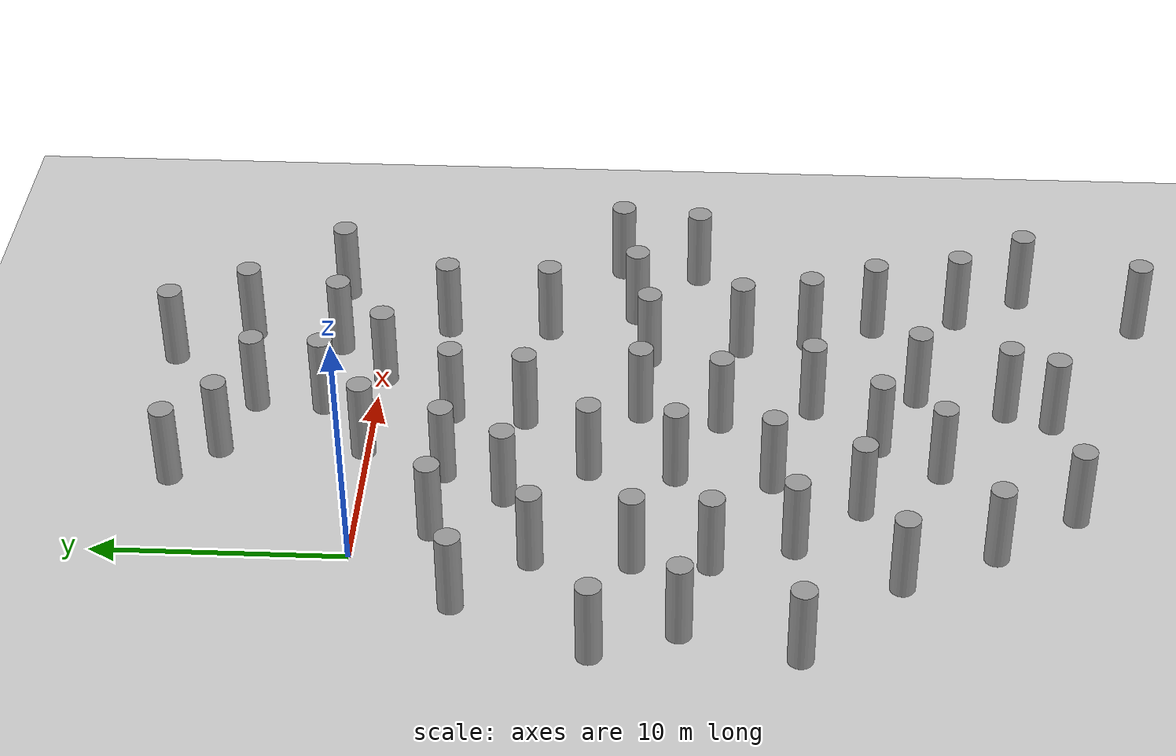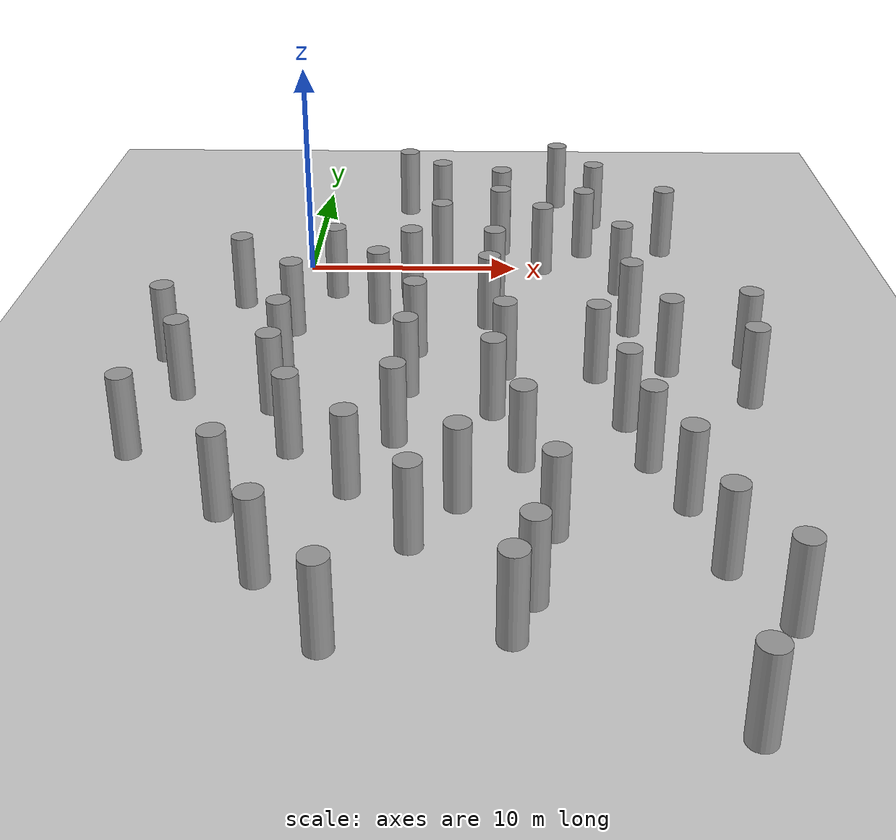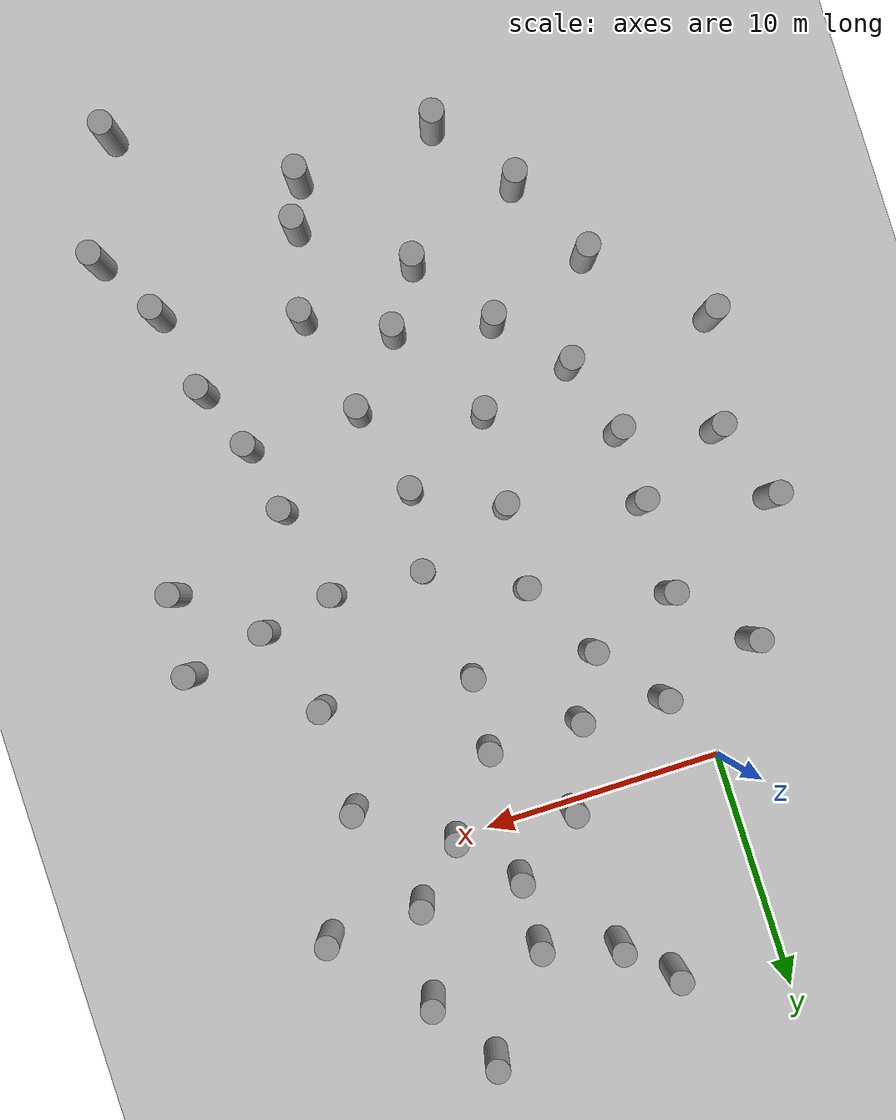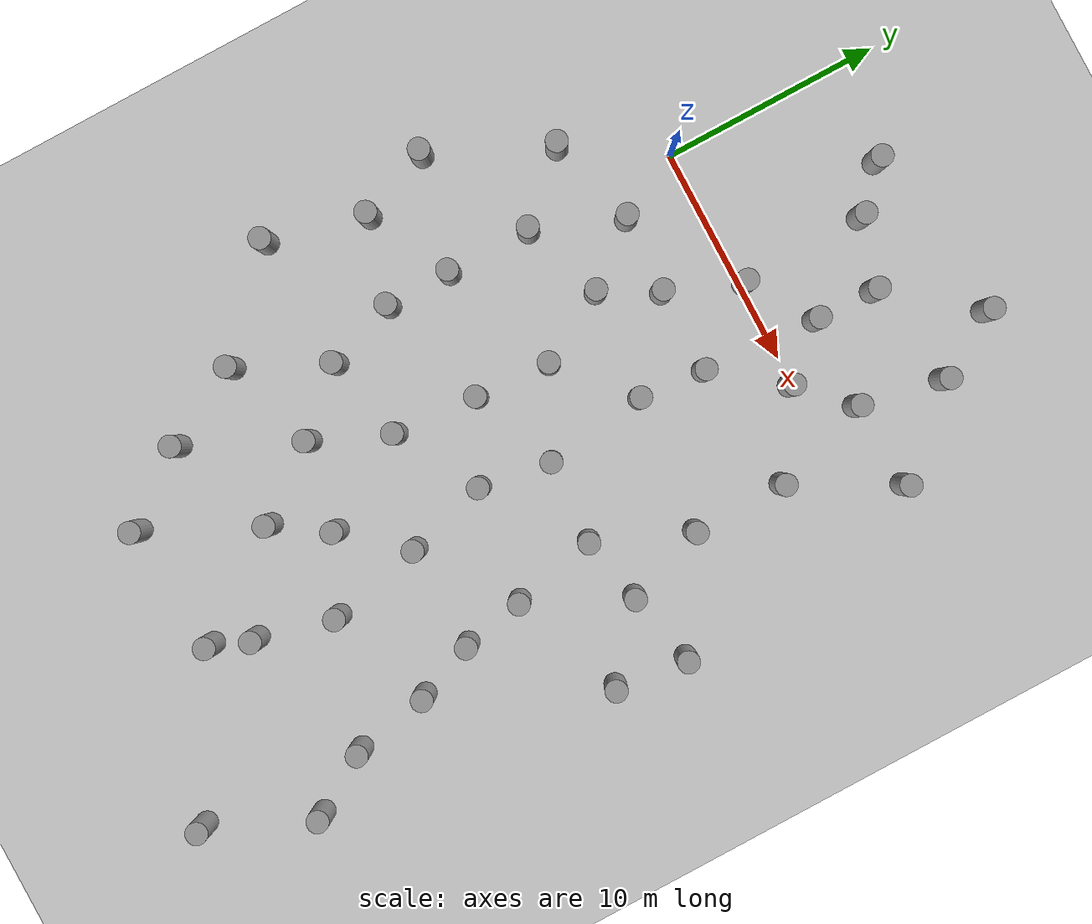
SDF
<sdf version="1.6">
 <world name="default">
  <model name="ground_plane">
   <static>1</static>
   <link name="link">
    <collision name="collision">
     <geometry><plane><normal>0 0 1</normal><size>5000 5000</size></plane></geometry>
     <surface><friction><ode><mu>1</mu><mu2>2</mu2></ode></friction></surface>
    </collision>
    <visual name="runway">
     <cast_shadows>0</cast_shadows>
     <geometry><plane><normal>0 0 1</normal><size>700 700</size></plane></geometry>
     <material>
      <script><uri>file://media/materials/scripts/gazebo.material</uri><name>Gazebo/Gray</name></script>
     </material>
    </visual>
   </link>
  </model>
  <model name="unit_cylinder_clone_0_clone">
   <link name="link">
    <inertial>
     <mass>1</mass>
     <inertia><ixx>0.145833</ixx><ixy>0</ixy><ixz>0</ixz><iyy>0.145833</iyy><iyz>0</iyz><izz>0.125</izz></inertia>
    </inertial>
    <gravity>0</gravity>
    <visual name="visual">
     <geometry><cylinder><radius>0.5</radius><length>3.42215</length></cylinder></geometry>
     <material>
      <script><name>Gazebo/Grey</name><uri>file://media/materials/scripts/gazebo.material</uri></script>
      <shader type="pixel"><normal_map>__default__</normal_map></shader>
     </material>
    </visual>
   </link>
   <static>0</static>
   <pose>6.42186 0.174639 1.71107 0 0 -0.000115</pose>
  </model>
  <model name="unit_cylinder_clone_0_clone_clone">
   <link name="link">
    <inertial>
     <mass>1</mass>
     <inertia><ixx>0.145833</ixx><ixy>0</ixy><ixz>0</ixz><iyy>0.145833</iyy><iyz>0</iyz><izz>0.125</izz></inertia>
    </inertial>
    <gravity>0</gravity>
    <visual name="visual">
     <geometry><cylinder><radius>0.5</radius><length>3.42215</length></cylinder></geometry>
     <material>
      <script><name>Gazebo/Grey</name><uri>file://media/materials/scripts/gazebo.material</uri></script>
      <shader type="pixel"><normal_map>__default__</normal_map></shader>
     </material>
    </visual>
   </link>
   <static>0</static>
   <pose>8.93174 -3.18169 1.71107 0 0 -0.000115</pose>
  </model>
  <model name="unit_cylinder_clone_0_clone_clone_0">
   <link name="link">
    <inertial>
     <mass>1</mass>
     <inertia><ixx>0.145833</ixx><ixy>0</ixy><ixz>0</ixz><iyy>0.145833</iyy><iyz>0</iyz><izz>0.125</izz></inertia>
    </inertial>
    <gravity>0</gravity>
    <visual name="visual">
     <geometry><cylinder><radius>0.5</radius><length>3.42215</length></cylinder></geometry>
     <material>
      <script><name>Gazebo/Grey</name><uri>file://media/materials/scripts/gazebo.material</uri></script>
      <shader type="pixel"><normal_map>__default__</normal_map></shader>
     </material>
    </visual>
   </link>
   <static>0</static>
   <pose>9.28561 2.13063 1.71107 0 0 -0.000115</pose>
  </model>
  <model name="unit_cylinder_clone_0_clone_clone_1">
   <link name="link">
    <inertial>
     <mass>1</mass>
     <inertia><ixx>0.145833</ixx><ixy>0</ixy><ixz>0</ixz><iyy>0.145833</iyy><iyz>0</iyz><izz>0.125</izz></inertia>
    </inertial>
    <gravity>0</gravity>
    <visual name="visual">
     <geometry><cylinder><radius>0.5</radius><length>3.42215</length></cylinder></geometry>
     <material>
      <script><name>Gazebo/Grey</name><uri>file://media/materials/scripts/gazebo.material</uri></script>
      <shader type="pixel"><normal_map>__default__</normal_map></shader>
     </material>
    </visual>
   </link>
   <static>0</static>
   <pose>13.4104 1.91654 1.71107 0 0 -0.000115</pose>
  </model>
  <model name="unit_cylinder_clone_0_clone_clone_2">
   <link name="link">
    <inertial>
     <mass>1</mass>
     <inertia><ixx>0.145833</ixx><ixy>0</ixy><ixz>0</ixz><iyy>0.145833</iyy><iyz>0</iyz><izz>0.125</izz></inertia>
    </inertial>
    <gravity>0</gravity>
    <visual name="visual">
     <geometry><cylinder><radius>0.5</radius><length>3.42215</length></cylinder></geometry>
     <material>
      <script><name>Gazebo/Grey</name><uri>file://media/materials/scripts/gazebo.material</uri></script>
      <shader type="pixel"><normal_map>__default__</normal_map></shader>
     </material>
    </visual>
   </link>
   <static>0</static>
   <pose>9.37097 4.93335 1.71107 0 0 -0.000115</pose>
  </model>
  <model name="unit_cylinder_clone_0_clone_clone_3">
   <link name="link">
    <inertial>
     <mass>1</mass>
     <inertia><ixx>0.145833</ixx><ixy>0</ixy><ixz>0</ixz><iyy>0.145833</iyy><iyz>0</iyz><izz>0.125</izz></inertia>
    </inertial>
    <gravity>0</gravity>
    <visual name="visual">
     <geometry><cylinder><radius>0.5</radius><length>3.42215</length></cylinder></geometry>
     <material>
      <script><name>Gazebo/Grey</name><uri>file://media/materials/scripts/gazebo.material</uri></script>
      <shader type="pixel"><normal_map>__default__</normal_map></shader>
     </material>
    </visual>
   </link>
   <static>0</static>
   <pose>14.1844 5.78773 1.71107 0 0 -0.000115</pose>
  </model>
  <model name="unit_cylinder_clone_0_clone_clone_4">
   <link name="link">
    <inertial>
     <mass>1</mass>
     <inertia><ixx>0.145833</ixx><ixy>0</ixy><ixz>0</ixz><iyy>0.145833</iyy><iyz>0</iyz><izz>0.125</izz></inertia>
    </inertial>
    <gravity>0</gravity>
    <visual name="visual">
     <geometry><cylinder><radius>0.5</radius><length>3.42215</length></cylinder></geometry>
     <material>
      <script><name>Gazebo/Grey</name><uri>file://media/materials/scripts/gazebo.material</uri></script>
      <shader type="pixel"><normal_map>__default__</normal_map></shader>
     </material>
    </visual>
   </link>
   <static>0</static>
   <pose>14.8696 -2.51989 1.71107 0 0 -0.000115</pose>
  </model>
  <model name="unit_cylinder_clone_0_clone_clone_5">
   <link name="link">
    <inertial>
     <mass>1</mass>
     <inertia><ixx>0.145833</ixx><ixy>0</ixy><ixz>0</ixz><iyy>0.145833</iyy><iyz>0</iyz><izz>0.125</izz></inertia>
    </inertial>
    <gravity>0</gravity>
    <visual name="visual">
     <geometry><cylinder><radius>0.5</radius><length>3.42215</length></cylinder></geometry>
     <material>
      <script><name>Gazebo/Grey</name><uri>file://media/materials/scripts/gazebo.material</uri></script>
      <shader type="pixel"><normal_map>__default__</normal_map></shader>
     </material>
    </visual>
   </link>
   <static>0</static>
   <pose>14.8701 -6.8123 1.71107 0 0 -0.000115</pose>
  </model>
  <model name="unit_cylinder_clone_0_clone_clone_6">
   <link name="link">
    <inertial>
     <mass>1</mass>
     <inertia><ixx>0.145833</ixx><ixy>0</ixy><ixz>0</ixz><iyy>0.145833</iyy><iyz>0</iyz><izz>0.125</izz></inertia>
    </inertial>
    <gravity>0</gravity>
    <visual name="visual">
     <geometry><cylinder><radius>0.5</radius><length>3.42215</length></cylinder></geometry>
     <material>
      <script><name>Gazebo/Grey</name><uri>file://media/materials/scripts/gazebo.material</uri></script>
      <shader type="pixel"><normal_map>__default__</normal_map></shader>
     </material>
    </visual>
   </link>
   <static>0</static>
   <pose>8.6708 -6.19269 1.71107 0 0 -0.000115</pose>
  </model>
  <model name="unit_cylinder_clone_0_clone_clone_7">
   <link name="link">
    <inertial>
     <mass>1</mass>
     <inertia><ixx>0.145833</ixx><ixy>0</ixy><ixz>0</ixz><iyy>0.145833</iyy><iyz>0</iyz><izz>0.125</izz></inertia>
    </inertial>
    <gravity>0</gravity>
    <visual name="visual">
     <geometry><cylinder><radius>0.5</radius><length>3.42215</length></cylinder></geometry>
     <material>
      <script><name>Gazebo/Grey</name><uri>file://media/materials/scripts/gazebo.material</uri></script>
      <shader type="pixel"><normal_map>__default__</normal_map></shader>
     </material>
    </visual>
   </link>
   <static>0</static>
   <pose>11.2841 -0.175234 1.71107 0 0 -0.000115</pose>
  </model>
  <model name="unit_cylinder_clone_0_clone_clone_9">
   <link name="link">
    <inertial>
     <mass>1</mass>
     <inertia><ixx>0.145833</ixx><ixy>0</ixy><ixz>0</ixz><iyy>0.145833</iyy><iyz>0</iyz><izz>0.125</izz></inertia>
    </inertial>
    <gravity>0</gravity>
    <visual name="visual">
     <geometry><cylinder><radius>0.5</radius><length>3.42215</length></cylinder></geometry>
     <material>
      <script><name>Gazebo/Grey</name><uri>file://media/materials/scripts/gazebo.material</uri></script>
      <shader type="pixel"><normal_map>__default__</normal_map></shader>
     </material>
    </visual>
   </link>
   <static>0</static>
   <pose>17.3993 2.13427 1.71107 0 0 -0.000115</pose>
  </model>
  <model name="unit_cylinder_clone_0_clone_clone_49">
   <link name="link">
    <inertial>
     <mass>1</mass>
     <inertia><ixx>0.145833</ixx><ixy>0</ixy><ixz>0</ixz><iyy>0.145833</iyy><iyz>0</iyz><izz>0.125</izz></inertia>
    </inertial>
    <gravity>0</gravity>
    <visual name="visual">
     <geometry><cylinder><radius>0.5</radius><length>3.42215</length></cylinder></geometry>
     <material>
      <script><name>Gazebo/Grey</name><uri>file://media/materials/scripts/gazebo.material</uri></script>
      <shader type="pixel"><normal_map>__default__</normal_map></shader>
     </material>
    </visual>
   </link>
   <static>0</static>
   <pose>19.5317 -9.74031 1.71107 0 0 -0.000115</pose>
  </model>
  <model name="unit_cylinder_clone_0_clone_clone_55">
   <link name="link">
    <inertial>
     <mass>1</mass>
     <inertia><ixx>0.145833</ixx><ixy>0</ixy><ixz>0</ixz><iyy>0.145833</iyy><iyz>0</iyz><izz>0.125</izz></inertia>
    </inertial>
    <gravity>0</gravity>
    <visual name="visual">
     <geometry><cylinder><radius>0.5</radius><length>3.42215</length></cylinder></geometry>
     <material>
      <script><name>Gazebo/Grey</name><uri>file://media/materials/scripts/gazebo.material</uri></script>
      <shader type="pixel"><normal_map>__default__</normal_map></shader>
     </material>
    </visual>
   </link>
   <static>0</static>
   <pose>18.0249 -26.8343 1.71107 0 0 -0.000115</pose>
  </model>
  <model name="unit_cylinder_clone_0_clone_clone_60">
   <link name="link">
    <inertial>
     <mass>1</mass>
     <inertia><ixx>0.145833</ixx><ixy>0</ixy><ixz>0</ixz><iyy>0.145833</iyy><iyz>0</iyz><izz>0.125</izz></inertia>
    </inertial>
    <gravity>0</gravity>
    <visual name="visual">
     <geometry><cylinder><radius>0.5</radius><length>3.42215</length></cylinder></geometry>
     <material>
      <script><name>Gazebo/Grey</name><uri>file://media/materials/scripts/gazebo.material</uri></script>
      <shader type="pixel"><normal_map>__default__</normal_map></shader>
     </material>
    </visual>
   </link>
   <static>0</static>
   <pose>19.1624 -13.0304 1.71107 0 0 -0.000115</pose>
  </model>
  <model name="unit_cylinder_clone_0_clone_clone_61">
   <link name="link">
    <inertial>
     <mass>1</mass>
     <inertia><ixx>0.145833</ixx><ixy>0</ixy><ixz>0</ixz><iyy>0.145833</iyy><iyz>0</iyz><izz>0.125</izz></inertia>
    </inertial>
    <gravity>0</gravity>
    <visual name="visual">
     <geometry><cylinder><radius>0.5</radius><length>3.42215</length></cylinder></geometry>
     <material>
      <script><name>Gazebo/Grey</name><uri>file://media/materials/scripts/gazebo.material</uri></script>
      <shader type="pixel"><normal_map>__default__</normal_map></shader>
     </material>
    </visual>
   </link>
   <static>0</static>
   <pose>16.1323 -10.4661 1.71107 0 0 -0.000115</pose>
  </model>
  <model name="unit_cylinder_clone_0_clone_clone_62">
   <link name="link">
    <inertial>
     <mass>1</mass>
     <inertia><ixx>0.145833</ixx><ixy>0</ixy><ixz>0</ixz><iyy>0.145833</iyy><iyz>0</iyz><izz>0.125</izz></inertia>
    </inertial>
    <gravity>0</gravity>
    <visual name="visual">
     <geometry><cylinder><radius>0.5</radius><length>3.42215</length></cylinder></geometry>
     <material>
      <script><name>Gazebo/Grey</name><uri>file://media/materials/scripts/gazebo.material</uri></script>
      <shader type="pixel"><normal_map>__default__</normal_map></shader>
     </material>
    </visual>
   </link>
   <static>0</static>
   <pose>16.3551 -24.0548 1.71107 0 0 -0.000115</pose>
  </model>
  <model name="unit_cylinder_clone_0_clone_clone_63">
   <link name="link">
    <inertial>
     <mass>1</mass>
     <inertia><ixx>0.145833</ixx><ixy>0</ixy><ixz>0</ixz><iyy>0.145833</iyy><iyz>0</iyz><izz>0.125</izz></inertia>
    </inertial>
    <gravity>0</gravity>
    <visual name="visual">
     <geometry><cylinder><radius>0.5</radius><length>3.42215</length></cylinder></geometry>
     <material>
      <script><name>Gazebo/Grey</name><uri>file://media/materials/scripts/gazebo.material</uri></script>
      <shader type="pixel"><normal_map>__default__</normal_map></shader>
     </material>
    </visual>
   </link>
   <static>0</static>
   <pose>15.5957 -20.5049 1.71107 0 0 -0.000115</pose>
  </model>
  <model name="unit_cylinder_clone_0_clone_clone_64">
   <link name="link">
    <inertial>
     <mass>1</mass>
     <inertia><ixx>0.145833</ixx><ixy>0</ixy><ixz>0</ixz><iyy>0.145833</iyy><iyz>0</iyz><izz>0.125</izz></inertia>
    </inertial>
    <gravity>0</gravity>
    <visual name="visual">
     <geometry><cylinder><radius>0.5</radius><length>3.42215</length></cylinder></geometry>
     <material>
      <script><name>Gazebo/Grey</name><uri>file://media/materials/scripts/gazebo.material</uri></script>
      <shader type="pixel"><normal_map>__default__</normal_map></shader>
     </material>
    </visual>
   </link>
   <static>0</static>
   <pose>13.9463 -14.9316 1.71107 0 0 -0.000115</pose>
  </model>
  <model name="unit_cylinder_clone_0_clone_clone_65">
   <link name="link">
    <inertial>
     <mass>1</mass>
     <inertia><ixx>0.145833</ixx><ixy>0</ixy><ixz>0</ixz><iyy>0.145833</iyy><iyz>0</iyz><izz>0.125</izz></inertia>
    </inertial>
    <gravity>0</gravity>
    <visual name="visual">
     <geometry><cylinder><radius>0.5</radius><length>3.42215</length></cylinder></geometry>
     <material>
      <script><name>Gazebo/Grey</name><uri>file://media/materials/scripts/gazebo.material</uri></script>
      <shader type="pixel"><normal_map>__default__</normal_map></shader>
     </material>
    </visual>
   </link>
   <static>0</static>
   <pose>9.82236 -17.8402 1.71107 0 0 -0.000115</pose>
  </model>
  <model name="unit_cylinder_clone_0_clone_clone_66">
   <link name="link">
    <inertial>
     <mass>1</mass>
     <inertia><ixx>0.145833</ixx><ixy>0</ixy><ixz>0</ixz><iyy>0.145833</iyy><iyz>0</iyz><izz>0.125</izz></inertia>
    </inertial>
    <gravity>0</gravity>
    <visual name="visual">
     <geometry><cylinder><radius>0.5</radius><length>3.42215</length></cylinder></geometry>
     <material>
      <script><name>Gazebo/Grey</name><uri>file://media/materials/scripts/gazebo.material</uri></script>
      <shader type="pixel"><normal_map>__default__</normal_map></shader>
     </material>
    </visual>
   </link>
   <static>0</static>
   <pose>10.8062 -22.1559 1.71107 0 0 -0.000115</pose>
  </model>
  <model name="unit_cylinder_clone_0_clone_clone_67">
   <link name="link">
    <inertial>
     <mass>1</mass>
     <inertia><ixx>0.145833</ixx><ixy>0</ixy><ixz>0</ixz><iyy>0.145833</iyy><iyz>0</iyz><izz>0.125</izz></inertia>
    </inertial>
    <gravity>0</gravity>
    <visual name="visual">
     <geometry><cylinder><radius>0.5</radius><length>3.42215</length></cylinder></geometry>
     <material>
      <script><name>Gazebo/Grey</name><uri>file://media/materials/scripts/gazebo.material</uri></script>
      <shader type="pixel"><normal_map>__default__</normal_map></shader>
     </material>
    </visual>
   </link>
   <static>0</static>
   <pose>9.9642 -25.7558 1.71107 0 0 -0.000115</pose>
  </model>
  <model name="unit_cylinder_clone_0_clone_clone_68">
   <link name="link">
    <inertial>
     <mass>1</mass>
     <inertia><ixx>0.145833</ixx><ixy>0</ixy><ixz>0</ixz><iyy>0.145833</iyy><iyz>0</iyz><izz>0.125</izz></inertia>
    </inertial>
    <gravity>0</gravity>
    <visual name="visual">
     <geometry><cylinder><radius>0.5</radius><length>3.42215</length></cylinder></geometry>
     <material>
      <script><name>Gazebo/Grey</name><uri>file://media/materials/scripts/gazebo.material</uri></script>
      <shader type="pixel"><normal_map>__default__</normal_map></shader>
     </material>
    </visual>
   </link>
   <static>0</static>
   <pose>5.8935 -22.9119 1.71107 0 0 -0.000115</pose>
  </model>
  <model name="unit_cylinder_clone_0_clone_clone_69">
   <link name="link">
    <inertial>
     <mass>1</mass>
     <inertia><ixx>0.145833</ixx><ixy>0</ixy><ixz>0</ixz><iyy>0.145833</iyy><iyz>0</iyz><izz>0.125</izz></inertia>
    </inertial>
    <gravity>0</gravity>
    <visual name="visual">
     <geometry><cylinder><radius>0.5</radius><length>3.42215</length></cylinder></geometry>
     <material>
      <script><name>Gazebo/Grey</name><uri>file://media/materials/scripts/gazebo.material</uri></script>
      <shader type="pixel"><normal_map>__default__</normal_map></shader>
     </material>
    </visual>
   </link>
   <static>0</static>
   <pose>9.28829 -10.8592 1.71107 0 0 -0.000115</pose>
  </model>
  <model name="unit_cylinder_clone_0_clone_clone_70">
   <link name="link">
    <inertial>
     <mass>1</mass>
     <inertia><ixx>0.145833</ixx><ixy>0</ixy><ixz>0</ixz><iyy>0.145833</iyy><iyz>0</iyz><izz>0.125</izz></inertia>
    </inertial>
    <gravity>0</gravity>
    <visual name="visual">
     <geometry><cylinder><radius>0.5</radius><length>3.42215</length></cylinder></geometry>
     <material>
      <script><name>Gazebo/Grey</name><uri>file://media/materials/scripts/gazebo.material</uri></script>
      <shader type="pixel"><normal_map>__default__</normal_map></shader>
     </material>
    </visual>
   </link>
   <static>0</static>
   <pose>8.77797 -14.1287 1.71107 0 0 -0.000115</pose>
  </model>
  <model name="unit_cylinder_clone_0_clone_clone_71">
   <link name="link">
    <inertial>
     <mass>1</mass>
     <inertia><ixx>0.145833</ixx><ixy>0</ixy><ixz>0</ixz><iyy>0.145833</iyy><iyz>0</iyz><izz>0.125</izz></inertia>
    </inertial>
    <gravity>0</gravity>
    <visual name="visual">
     <geometry><cylinder><radius>0.5</radius><length>3.42215</length></cylinder></geometry>
     <material>
      <script><name>Gazebo/Grey</name><uri>file://media/materials/scripts/gazebo.material</uri></script>
      <shader type="pixel"><normal_map>__default__</normal_map></shader>
     </material>
    </visual>
   </link>
   <static>0</static>
   <pose>7.49045 -20.5014 1.71107 0 0 -0.000115</pose>
  </model>
  <model name="unit_cylinder_clone_0_clone_clone_72">
   <link name="link">
    <inertial>
     <mass>1</mass>
     <inertia><ixx>0.145833</ixx><ixy>0</ixy><ixz>0</ixz><iyy>0.145833</iyy><iyz>0</iyz><izz>0.125</izz></inertia>
    </inertial>
    <gravity>0</gravity>
    <visual name="visual">
     <geometry><cylinder><radius>0.5</radius><length>3.42215</length></cylinder></geometry>
     <material>
      <script><name>Gazebo/Grey</name><uri>file://media/materials/scripts/gazebo.material</uri></script>
      <shader type="pixel"><normal_map>__default__</normal_map></shader>
     </material>
    </visual>
   </link>
   <static>0</static>
   <pose>14.5206 -17.7966 1.71107 0 0 -0.000115</pose>
  </model>
  <model name="unit_cylinder_clone_0_clone_clone_73">
   <link name="link">
    <inertial>
     <mass>1</mass>
     <inertia><ixx>0.145833</ixx><ixy>0</ixy><ixz>0</ixz><iyy>0.145833</iyy><iyz>0</iyz><izz>0.125</izz></inertia>
    </inertial>
    <gravity>0</gravity>
    <visual name="visual">
     <geometry><cylinder><radius>0.5</radius><length>3.42215</length></cylinder></geometry>
     <material>
      <script><name>Gazebo/Grey</name><uri>file://media/materials/scripts/gazebo.material</uri></script>
      <shader type="pixel"><normal_map>__default__</normal_map></shader>
     </material>
    </visual>
   </link>
   <static>0</static>
   <pose>5.00571 -16.2365 1.71107 0 0 -0.000115</pose>
  </model>
  <model name="unit_cylinder_clone_0_clone_clone_74">
   <link name="link">
    <inertial>
     <mass>1</mass>
     <inertia><ixx>0.145833</ixx><ixy>0</ixy><ixz>0</ixz><iyy>0.145833</iyy><iyz>0</iyz><izz>0.125</izz></inertia>
    </inertial>
    <gravity>0</gravity>
    <visual name="visual">
     <geometry><cylinder><radius>0.5</radius><length>3.42215</length></cylinder></geometry>
     <material>
      <script><name>Gazebo/Grey</name><uri>file://media/materials/scripts/gazebo.material</uri></script>
      <shader type="pixel"><normal_map>__default__</normal_map></shader>
     </material>
    </visual>
   </link>
   <static>0</static>
   <pose>13.0824 -11.0732 1.71107 0 0 -0.000115</pose>
  </model>
  <model name="unit_cylinder_clone_0_clone_clone_75">
   <link name="link">
    <inertial>
     <mass>1</mass>
     <inertia><ixx>0.145833</ixx><ixy>0</ixy><ixz>0</ixz><iyy>0.145833</iyy><iyz>0</iyz><izz>0.125</izz></inertia>
    </inertial>
    <gravity>0</gravity>
    <visual name="visual">
     <geometry><cylinder><radius>0.5</radius><length>3.42215</length></cylinder></geometry>
     <material>
      <script><name>Gazebo/Grey</name><uri>file://media/materials/scripts/gazebo.material</uri></script>
      <shader type="pixel"><normal_map>__default__</normal_map></shader>
     </material>
    </visual>
   </link>
   <static>0</static>
   <pose>5.29371 -12.3858 1.71107 0 0 -0.000115</pose>
  </model>
  <model name="unit_cylinder_clone_0_clone_clone_76">
   <link name="link">
    <inertial>
     <mass>1</mass>
     <inertia><ixx>0.145833</ixx><ixy>0</ixy><ixz>0</ixz><iyy>0.145833</iyy><iyz>0</iyz><izz>0.125</izz></inertia>
    </inertial>
    <gravity>0</gravity>
    <visual name="visual">
     <geometry><cylinder><radius>0.5</radius><length>3.42215</length></cylinder></geometry>
     <material>
      <script><name>Gazebo/Grey</name><uri>file://media/materials/scripts/gazebo.material</uri></script>
      <shader type="pixel"><normal_map>__default__</normal_map></shader>
     </material>
    </visual>
   </link>
   <static>0</static>
   <pose>3.72444 -5.70004 1.71107 0 0 -0.000115</pose>
  </model>
  <model name="unit_cylinder_clone_0_clone_clone_77">
   <link name="link">
    <inertial>
     <mass>1</mass>
     <inertia><ixx>0.145833</ixx><ixy>0</ixy><ixz>0</ixz><iyy>0.145833</iyy><iyz>0</iyz><izz>0.125</izz></inertia>
    </inertial>
    <gravity>0</gravity>
    <visual name="visual">
     <geometry><cylinder><radius>0.5</radius><length>3.42215</length></cylinder></geometry>
     <material>
      <script><name>Gazebo/Grey</name><uri>file://media/materials/scripts/gazebo.material</uri></script>
      <shader type="pixel"><normal_map>__default__</normal_map></shader>
     </material>
    </visual>
   </link>
   <static>0</static>
   <pose>5.5007 -8.94298 1.71107 0 0 -0.000115</pose>
  </model>
  <model name="unit_cylinder_clone_0_clone_clone_78">
   <link name="link">
    <inertial>
     <mass>1</mass>
     <inertia><ixx>0.145833</ixx><ixy>0</ixy><ixz>0</ixz><iyy>0.145833</iyy><iyz>0</iyz><izz>0.125</izz></inertia>
    </inertial>
    <gravity>0</gravity>
    <visual name="visual">
     <geometry><cylinder><radius>0.5</radius><length>3.42215</length></cylinder></geometry>
     <material>
      <script><name>Gazebo/Grey</name><uri>file://media/materials/scripts/gazebo.material</uri></script>
      <shader type="pixel"><normal_map>__default__</normal_map></shader>
     </material>
    </visual>
   </link>
   <static>0</static>
   <pose>1.10693 -17.0797 1.71107 0 0 -0.000115</pose>
  </model>
  <model name="unit_cylinder_clone_0_clone_clone_79">
   <link name="link">
    <inertial>
     <mass>1</mass>
     <inertia><ixx>0.145833</ixx><ixy>0</ixy><ixz>0</ixz><iyy>0.145833</iyy><iyz>0</iyz><izz>0.125</izz></inertia>
    </inertial>
    <gravity>0</gravity>
    <visual name="visual">
     <geometry><cylinder><radius>0.5</radius><length>3.42215</length></cylinder></geometry>
     <material>
      <script><name>Gazebo/Grey</name><uri>file://media/materials/scripts/gazebo.material</uri></script>
      <shader type="pixel"><normal_map>__default__</normal_map></shader>
     </material>
    </visual>
   </link>
   <static>0</static>
   <pose>-0.86008 -21.1373 1.71107 0 0 -0.000115</pose>
  </model>
  <model name="unit_cylinder_clone_0_clone_clone_80">
   <link name="link">
    <inertial>
     <mass>1</mass>
     <inertia><ixx>0.145833</ixx><ixy>0</ixy><ixz>0</ixz><iyy>0.145833</iyy><iyz>0</iyz><izz>0.125</izz></inertia>
    </inertial>
    <gravity>0</gravity>
    <visual name="visual">
     <geometry><cylinder><radius>0.5</radius><length>3.42215</length></cylinder></geometry>
     <material>
      <script><name>Gazebo/Grey</name><uri>file://media/materials/scripts/gazebo.material</uri></script>
      <shader type="pixel"><normal_map>__default__</normal_map></shader>
     </material>
    </visual>
   </link>
   <static>0</static>
   <pose>1.01019 -24.8073 1.71107 0 0 -0.000115</pose>
  </model>
  <model name="unit_cylinder_clone_0_clone_clone_81">
   <link name="link">
    <inertial>
     <mass>1</mass>
     <inertia><ixx>0.145833</ixx><ixy>0</ixy><ixz>0</ixz><iyy>0.145833</iyy><iyz>0</iyz><izz>0.125</izz></inertia>
    </inertial>
    <gravity>0</gravity>
    <visual name="visual">
     <geometry><cylinder><radius>0.5</radius><length>3.42215</length></cylinder></geometry>
     <material>
      <script><name>Gazebo/Grey</name><uri>file://media/materials/scripts/gazebo.material</uri></script>
      <shader type="pixel"><normal_map>__default__</normal_map></shader>
     </material>
    </visual>
   </link>
   <static>0</static>
   <pose>3.42429 -28.0616 1.71107 0 0 -0.000115</pose>
  </model>
  <model name="unit_cylinder_clone_0_clone_clone_82">
   <link name="link">
    <inertial>
     <mass>1</mass>
     <inertia><ixx>0.145833</ixx><ixy>0</ixy><ixz>0</ixz><iyy>0.145833</iyy><iyz>0</iyz><izz>0.125</izz></inertia>
    </inertial>
    <gravity>0</gravity>
    <visual name="visual">
     <geometry><cylinder><radius>0.5</radius><length>3.42215</length></cylinder></geometry>
     <material>
      <script><name>Gazebo/Grey</name><uri>file://media/materials/scripts/gazebo.material</uri></script>
      <shader type="pixel"><normal_map>__default__</normal_map></shader>
     </material>
    </visual>
   </link>
   <static>0</static>
   <pose>9.26653 -27.6018 1.71107 0 0 -0.000115</pose>
  </model>
  <model name="unit_cylinder_clone_0_clone_clone_83">
   <link name="link">
    <inertial>
     <mass>1</mass>
     <inertia><ixx>0.145833</ixx><ixy>0</ixy><ixz>0</ixz><iyy>0.145833</iyy><iyz>0</iyz><izz>0.125</izz></inertia>
    </inertial>
    <gravity>0</gravity>
    <visual name="visual">
     <geometry><cylinder><radius>0.5</radius><length>3.42215</length></cylinder></geometry>
     <material>
      <script><name>Gazebo/Grey</name><uri>file://media/materials/scripts/gazebo.material</uri></script>
      <shader type="pixel"><normal_map>__default__</normal_map></shader>
     </material>
    </visual>
   </link>
   <static>0</static>
   <pose>16.029 -31.6017 1.71107 0 0 -0.000115</pose>
  </model>
  <model name="unit_cylinder_clone_0_clone_clone_84">
   <link name="link">
    <inertial>
     <mass>1</mass>
     <inertia><ixx>0.145833</ixx><ixy>0</ixy><ixz>0</ixz><iyy>0.145833</iyy><iyz>0</iyz><izz>0.125</izz></inertia>
    </inertial>
    <gravity>0</gravity>
    <visual name="visual">
     <geometry><cylinder><radius>0.5</radius><length>3.42215</length></cylinder></geometry>
     <material>
      <script><name>Gazebo/Grey</name><uri>file://media/materials/scripts/gazebo.material</uri></script>
      <shader type="pixel"><normal_map>__default__</normal_map></shader>
     </material>
    </visual>
   </link>
   <static>0</static>
   <pose>3.50523 -19.6975 1.71107 0 0 -0.000115</pose>
  </model>
  <model name="unit_cylinder_clone_0_clone_clone_85">
   <link name="link">
    <inertial>
     <mass>1</mass>
     <inertia><ixx>0.145833</ixx><ixy>0</ixy><ixz>0</ixz><iyy>0.145833</iyy><iyz>0</iyz><izz>0.125</izz></inertia>
    </inertial>
    <gravity>0</gravity>
    <visual name="visual">
     <geometry><cylinder><radius>0.5</radius><length>3.42215</length></cylinder></geometry>
     <material>
      <script><name>Gazebo/Grey</name><uri>file://media/materials/scripts/gazebo.material</uri></script>
      <shader type="pixel"><normal_map>__default__</normal_map></shader>
     </material>
    </visual>
   </link>
   <static>0</static>
   <pose>0.019225 -13.8729 1.71107 0 0 -0.000115</pose>
  </model>
  <model name="unit_cylinder_clone_0_clone_clone_86">
   <link name="link">
    <inertial>
     <mass>1</mass>
     <inertia><ixx>0.145833</ixx><ixy>0</ixy><ixz>0</ixz><iyy>0.145833</iyy><iyz>0</iyz><izz>0.125</izz></inertia>
    </inertial>
    <gravity>0</gravity>
    <visual name="visual">
     <geometry><cylinder><radius>0.5</radius><length>3.42215</length></cylinder></geometry>
     <material>
      <script><name>Gazebo/Grey</name><uri>file://media/materials/scripts/gazebo.material</uri></script>
      <shader type="pixel"><normal_map>__default__</normal_map></shader>
     </material>
    </visual>
   </link>
   <static>0</static>
   <pose>0 -7 1.71107 0 0 -0.000115</pose>
  </model>
  <model name="unit_cylinder_clone_0_clone_clone_87">
   <link name="link">
    <inertial>
     <mass>1</mass>
     <inertia><ixx>0.145833</ixx><ixy>0</ixy><ixz>0</ixz><iyy>0.145833</iyy><iyz>0</iyz><izz>0.125</izz></inertia>
    </inertial>
    <gravity>0</gravity>
    <visual name="visual">
     <geometry><cylinder><radius>0.5</radius><length>3.42215</length></cylinder></geometry>
     <material>
      <script><name>Gazebo/Grey</name><uri>file://media/materials/scripts/gazebo.material</uri></script>
      <shader type="pixel"><normal_map>__default__</normal_map></shader>
     </material>
    </visual>
   </link>
   <static>0</static>
   <pose>-4.96979 -17.2607 1.71107 0 0 -0.000115</pose>
  </model>
  <model name="unit_cylinder_clone_0_clone_clone_88">
   <link name="link">
    <inertial>
     <mass>1</mass>
     <inertia><ixx>0.145833</ixx><ixy>0</ixy><ixz>0</ixz><iyy>0.145833</iyy><iyz>0</iyz><izz>0.125</izz></inertia>
    </inertial>
    <gravity>0</gravity>
    <visual name="visual">
     <geometry><cylinder><radius>0.5</radius><length>3.42215</length></cylinder></geometry>
     <material>
      <script><name>Gazebo/Grey</name><uri>file://media/materials/scripts/gazebo.material</uri></script>
      <shader type="pixel"><normal_map>__default__</normal_map></shader>
     </material>
    </visual>
   </link>
   <static>0</static>
   <pose>-3.81934 -12.7714 1.71107 0 0 -0.000115</pose>
  </model>
  <model name="unit_cylinder_clone_0_clone_clone_89">
   <link name="link">
    <inertial>
     <mass>1</mass>
     <inertia><ixx>0.145833</ixx><ixy>0</ixy><ixz>0</ixz><iyy>0.145833</iyy><iyz>0</iyz><izz>0.125</izz></inertia>
    </inertial>
    <gravity>0</gravity>
    <visual name="visual">
     <geometry><cylinder><radius>0.5</radius><length>3.42215</length></cylinder></geometry>
     <material>
      <script><name>Gazebo/Grey</name><uri>file://media/materials/scripts/gazebo.material</uri></script>
      <shader type="pixel"><normal_map>__default__</normal_map></shader>
     </material>
    </visual>
   </link>
   <static>0</static>
   <pose>-0.015801 -10.8731 1.71107 0 0 -0.000115</pose>
  </model>
  <model name="unit_cylinder_clone_0_clone_clone_90">
   <link name="link">
    <inertial>
     <mass>1</mass>
     <inertia><ixx>0.145833</ixx><ixy>0</ixy><ixz>0</ixz><iyy>0.145833</iyy><iyz>0</iyz><izz>0.125</izz></inertia>
    </inertial>
    <gravity>0</gravity>
    <visual name="visual">
     <geometry><cylinder><radius>0.5</radius><length>3.42215</length></cylinder></geometry>
     <material>
      <script><name>Gazebo/Grey</name><uri>file://media/materials/scripts/gazebo.material</uri></script>
      <shader type="pixel"><normal_map>__default__</normal_map></shader>
     </material>
    </visual>
   </link>
   <static>0</static>
   <pose>-5.10137 -9.51203 1.71107 0 0 -0.000115</pose>
  </model>
  <model name="unit_cylinder_clone_0_clone_clone_91">
   <link name="link">
    <inertial>
     <mass>1</mass>
     <inertia><ixx>0.145833</ixx><ixy>0</ixy><ixz>0</ixz><iyy>0.145833</iyy><iyz>0</iyz><izz>0.125</izz></inertia>
    </inertial>
    <gravity>0</gravity>
    <visual name="visual">
     <geometry><cylinder><radius>0.5</radius><length>3.42215</length></cylinder></geometry>
     <material>
      <script><name>Gazebo/Grey</name><uri>file://media/materials/scripts/gazebo.material</uri></script>
      <shader type="pixel"><normal_map>__default__</normal_map></shader>
     </material>
    </visual>
   </link>
   <static>0</static>
   <pose>-2.61488 -4.19436 1.71107 0 0 -0.000115</pose>
  </model>
  <model name="unit_cylinder_clone_0_clone_clone_92">
   <link name="link">
    <inertial>
     <mass>1</mass>
     <inertia><ixx>0.145833</ixx><ixy>0</ixy><ixz>0</ixz><iyy>0.145833</iyy><iyz>0</iyz><izz>0.125</izz></inertia>
    </inertial>
    <gravity>0</gravity>
    <visual name="visual">
     <geometry><cylinder><radius>0.5</radius><length>3.42215</length></cylinder></geometry>
     <material>
      <script><name>Gazebo/Grey</name><uri>file://media/materials/scripts/gazebo.material</uri></script>
      <shader type="pixel"><normal_map>__default__</normal_map></shader>
     </material>
    </visual>
   </link>
   <static>0</static>
   <pose>1.54271 -3.01306 1.71107 0 0 -0.000115</pose>
  </model>
  <model name="unit_cylinder_clone_0_clone_clone_93">
   <link name="link">
    <inertial>
     <mass>1</mass>
     <inertia><ixx>0.145833</ixx><ixy>0</ixy><ixz>0</ixz><iyy>0.145833</iyy><iyz>0</iyz><izz>0.125</izz></inertia>
    </inertial>
    <gravity>0</gravity>
    <visual name="visual">
     <geometry><cylinder><radius>0.5</radius><length>3.42215</length></cylinder></geometry>
     <material>
      <script><name>Gazebo/Grey</name><uri>file://media/materials/scripts/gazebo.material</uri></script>
      <shader type="pixel"><normal_map>__default__</normal_map></shader>
     </material>
    </visual>
   </link>
   <static>0</static>
   <pose>5.08928 -3.18373 1.71107 0 0 -0.000115</pose>
  </model>
  <model name="unit_cylinder_clone_0_clone_clone_94">
   <link name="link">
    <inertial>
     <mass>1</mass>
     <inertia><ixx>0.145833</ixx><ixy>0</ixy><ixz>0</ixz><iyy>0.145833</iyy><iyz>0</iyz><izz>0.125</izz></inertia>
    </inertial>
    <gravity>0</gravity>
    <visual name="visual">
     <geometry><cylinder><radius>0.5</radius><length>3.42215</length></cylinder></geometry>
     <material>
      <script><name>Gazebo/Grey</name><uri>file://media/materials/scripts/gazebo.material</uri></script>
      <shader type="pixel"><normal_map>__default__</normal_map></shader>
     </material>
    </visual>
   </link>
   <static>0</static>
   <pose>4.48258 7.69524 1.71107 0 0 -0.000115</pose>
  </model>
  <model name="unit_cylinder_clone_0_clone_clone_95">
   <link name="link">
    <inertial>
     <mass>1</mass>
     <inertia><ixx>0.145833</ixx><ixy>0</ixy><ixz>0</ixz><iyy>0.145833</iyy><iyz>0</iyz><izz>0.125</izz></inertia>
    </inertial>
    <gravity>0</gravity>
    <visual name="visual">
     <geometry><cylinder><radius>0.5</radius><length>3.42215</length></cylinder></geometry>
     <material>
      <script><name>Gazebo/Grey</name><uri>file://media/materials/scripts/gazebo.material</uri></script>
      <shader type="pixel"><normal_map>__default__</normal_map></shader>
     </material>
    </visual>
   </link>
   <static>0</static>
   <pose>12.4402 8.8145 1.71107 0 0 -0.000115</pose>
  </model>
  <model name="unit_cylinder_clone_0_clone_clone_96">
   <link name="link">
    <inertial>
     <mass>1</mass>
     <inertia><ixx>0.145833</ixx><ixy>0</ixy><ixz>0</ixz><iyy>0.145833</iyy><iyz>0</iyz><izz>0.125</izz></inertia>
    </inertial>
    <gravity>0</gravity>
    <visual name="visual">
     <geometry><cylinder><radius>0.5</radius><length>3.42215</length></cylinder></geometry>
     <material>
      <script><name>Gazebo/Grey</name><uri>file://media/materials/scripts/gazebo.material</uri></script>
      <shader type="pixel"><normal_map>__default__</normal_map></shader>
     </material>
    </visual>
   </link>
   <static>0</static>
   <pose>6.29625 5.9477 1.71107 0 0 -0.000115</pose>
  </model>
 </world>
</sdf>
